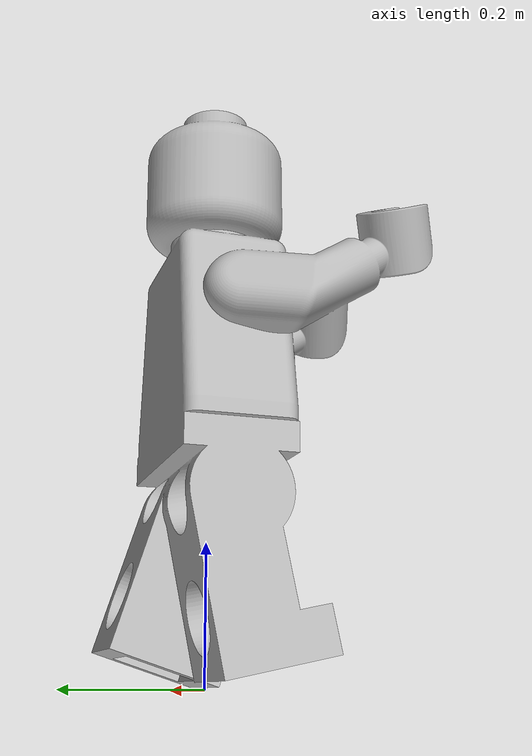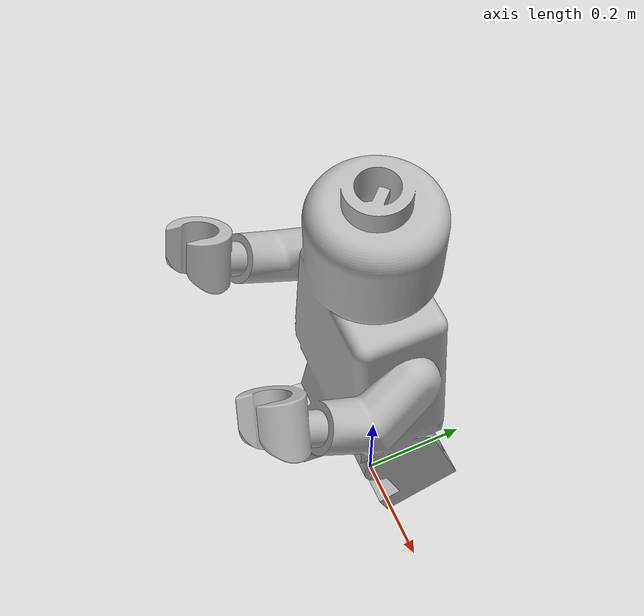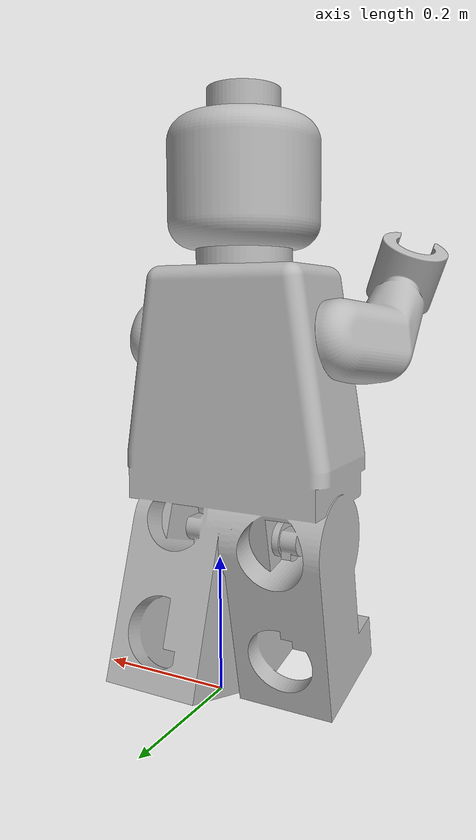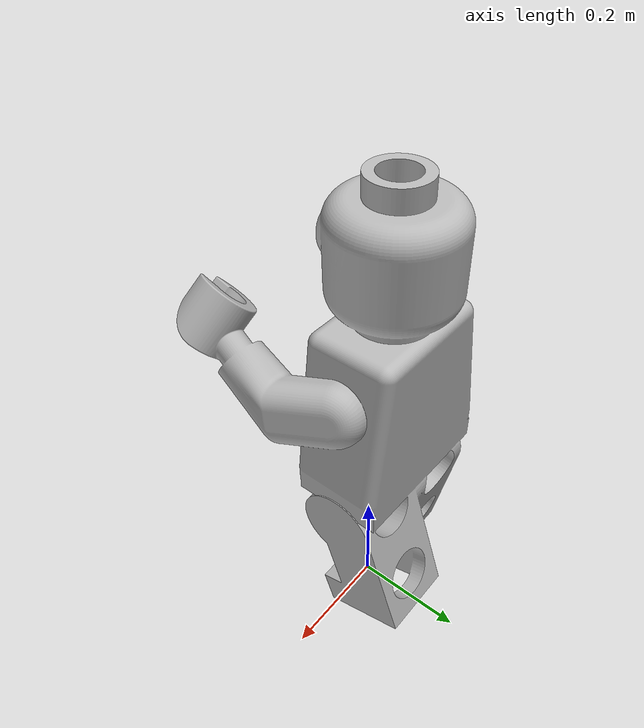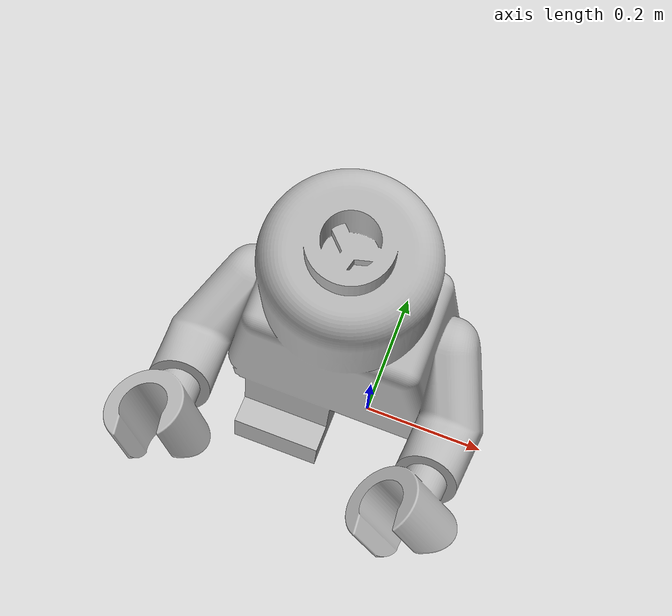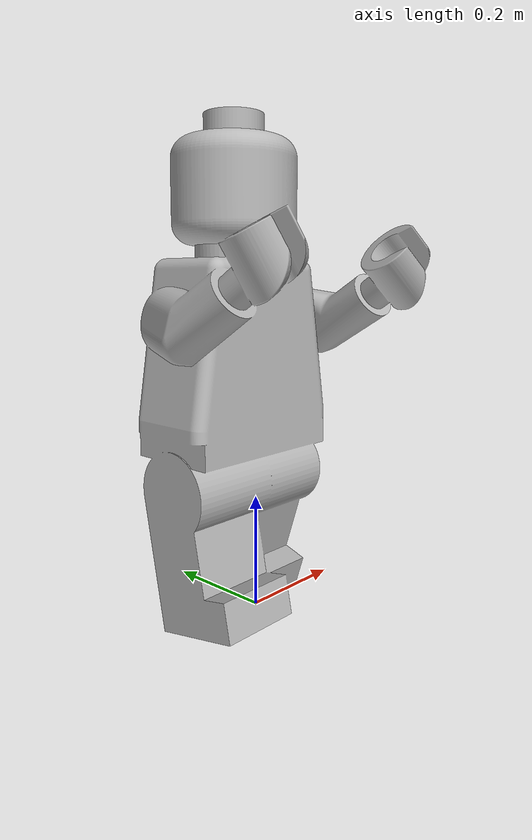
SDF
<?xml version="1.0"?>
<sdf version="1.7">
  <model name="robot_base">
    <static>true</static>
    <link name="link">
      <pose>-0.3 0.15 0 1.57 0 0</pose>

      <visual name="visual">
        <geometry>
          <mesh>
            <uri>model://robot_base/meshes/legofigure.STL</uri>
            <scale>0.02 0.02 0.02</scale>
          </mesh>
        </geometry>
      </visual>
    </link>
  </model>
</sdf>
